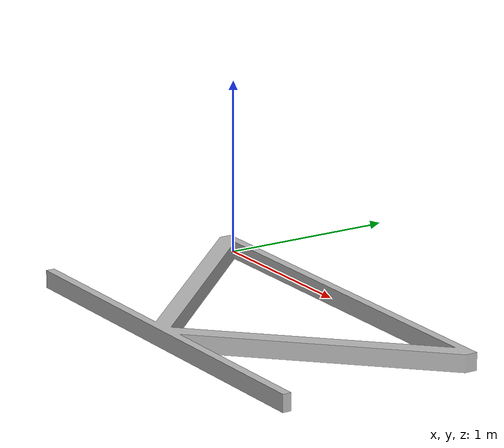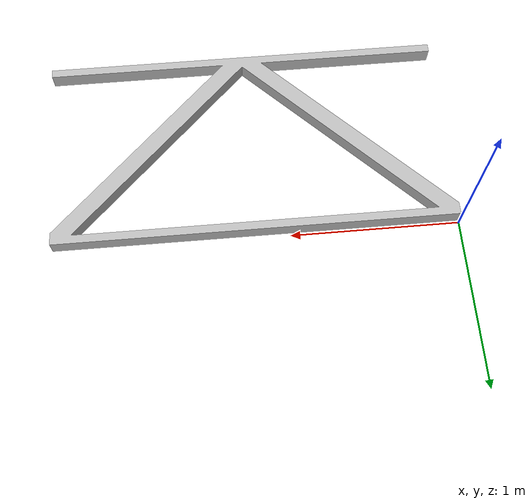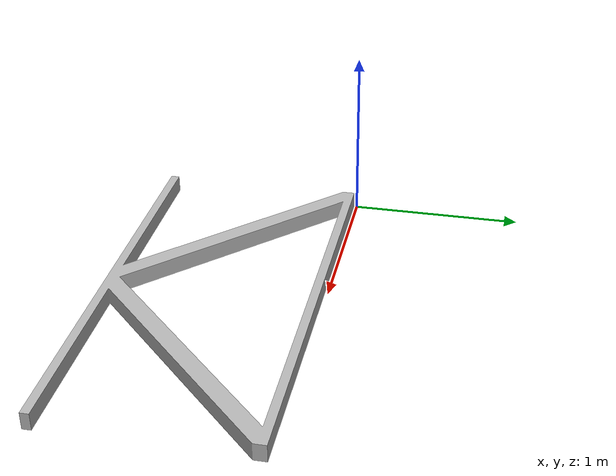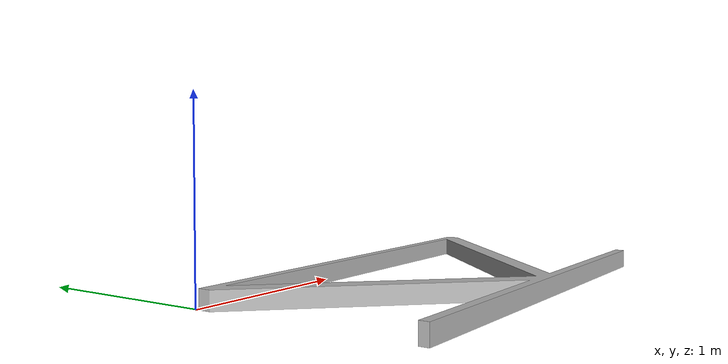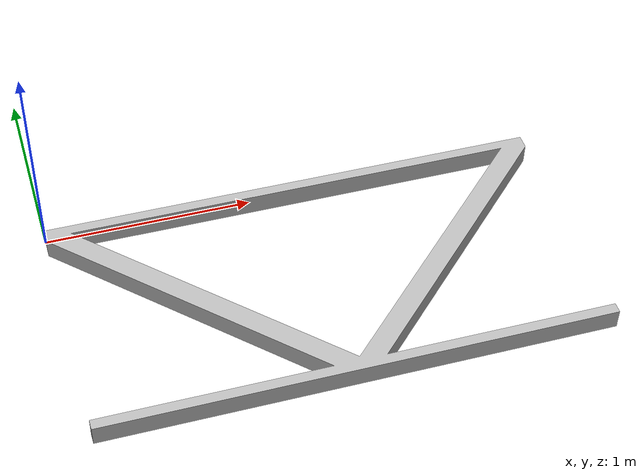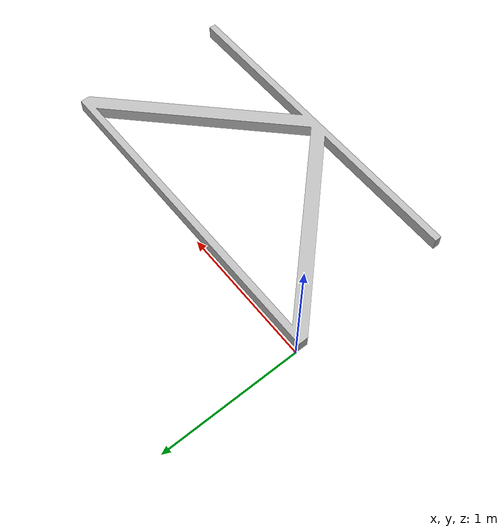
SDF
<?xml version='1.0'?>
<sdf version='1.6'>
  <model name='terrain-rails_k_flat_2'>
    <static>true</static>
    <link name='base_link'>
      <pose frame=''>0 0 0 0 -0 0</pose>
      <inertial>
        <pose frame=''>1.2 -0.618 0.05 0 -0 0</pose>
        <mass>31.887</mass>
        <inertia>
          <ixx>2.124</ixx>
          <ixy>1.3398e-15</ixy>
          <ixz>3.995e-15</ixz>
          <iyy>8.5724</iyy>
          <iyz>-1.7346e-16</iyz>
          <izz>10.643</izz>
        </inertia>
      </inertial>
      <collision name='base_link_collision'>
        <pose frame=''>0 0 0 0 -0 0</pose>
        <geometry>
          <mesh>
            <scale>1 1 1</scale>
            <uri>model://terrain-rails_k_flat_2/meshes/base_link.STL</uri>
          </mesh>
        </geometry>
        <surface>
          <contact>
            <collide_bitmask>65535</collide_bitmask>
            <ode/>
          </contact>
          <friction>
            <ode>
              <mu>2</mu>
              <mu2>2</mu2>
            </ode>
            <torsional>
              <ode/>
            </torsional>
          </friction>
          <bounce/>
        </surface>
      </collision>
      <visual name='base_link_visual'>
        <pose frame=''>0 0 0 0 -0 0</pose>
        <geometry>
          <mesh>
            <scale>1 1 1</scale>
            <uri>model://terrain-rails_k_flat_2/meshes/base_link.dae</uri>
          </mesh>
        </geometry>
      </visual>
    </link>
  </model>
</sdf>
